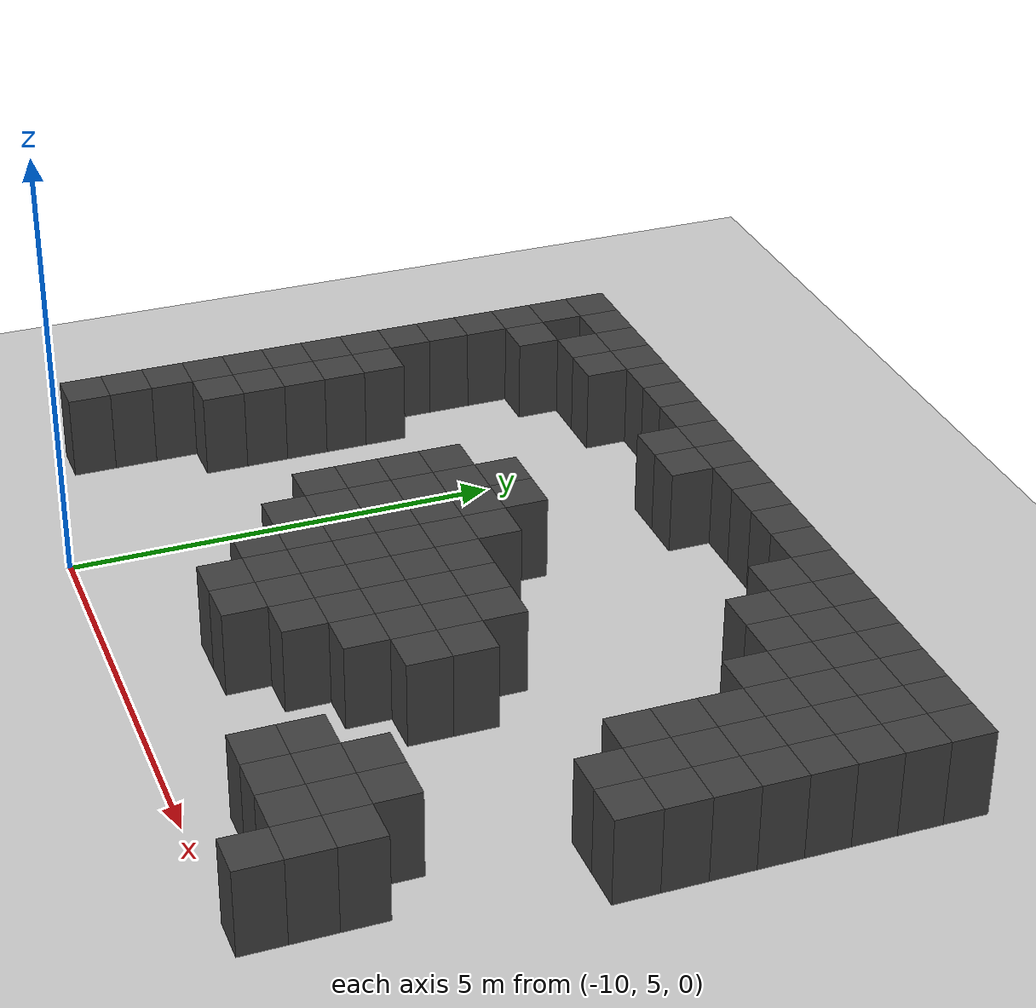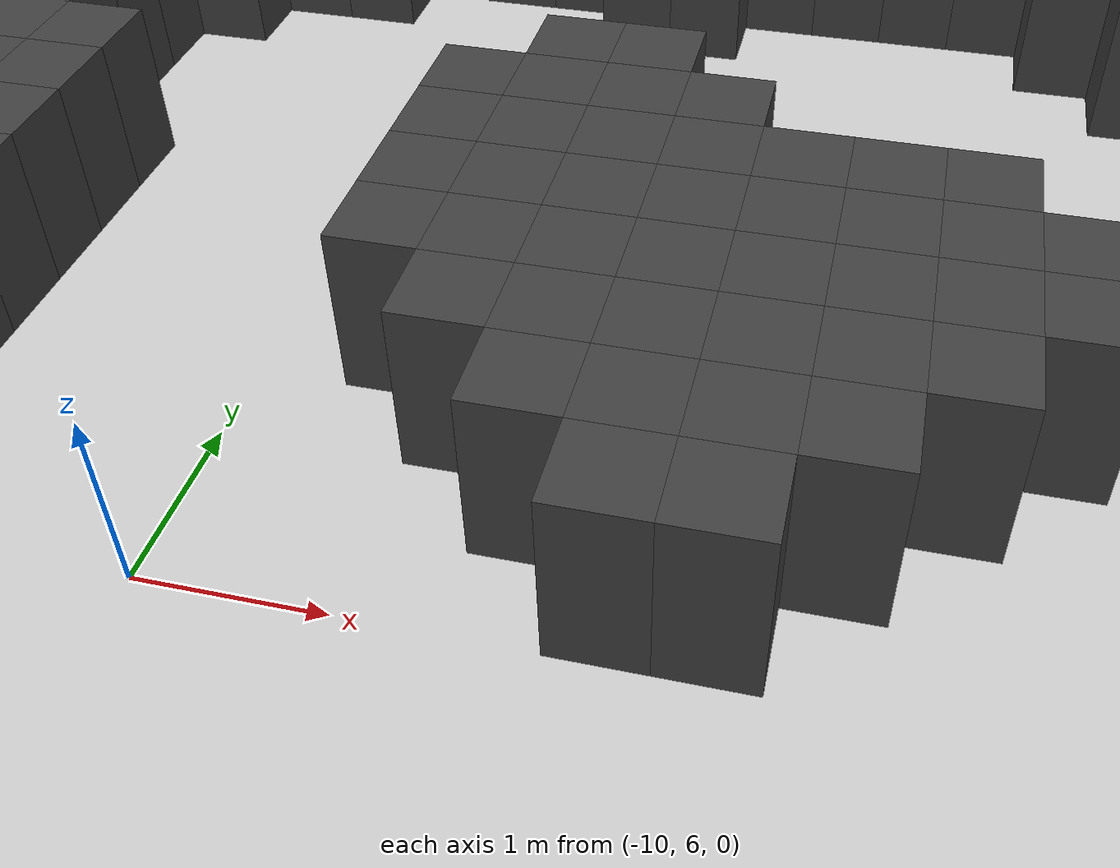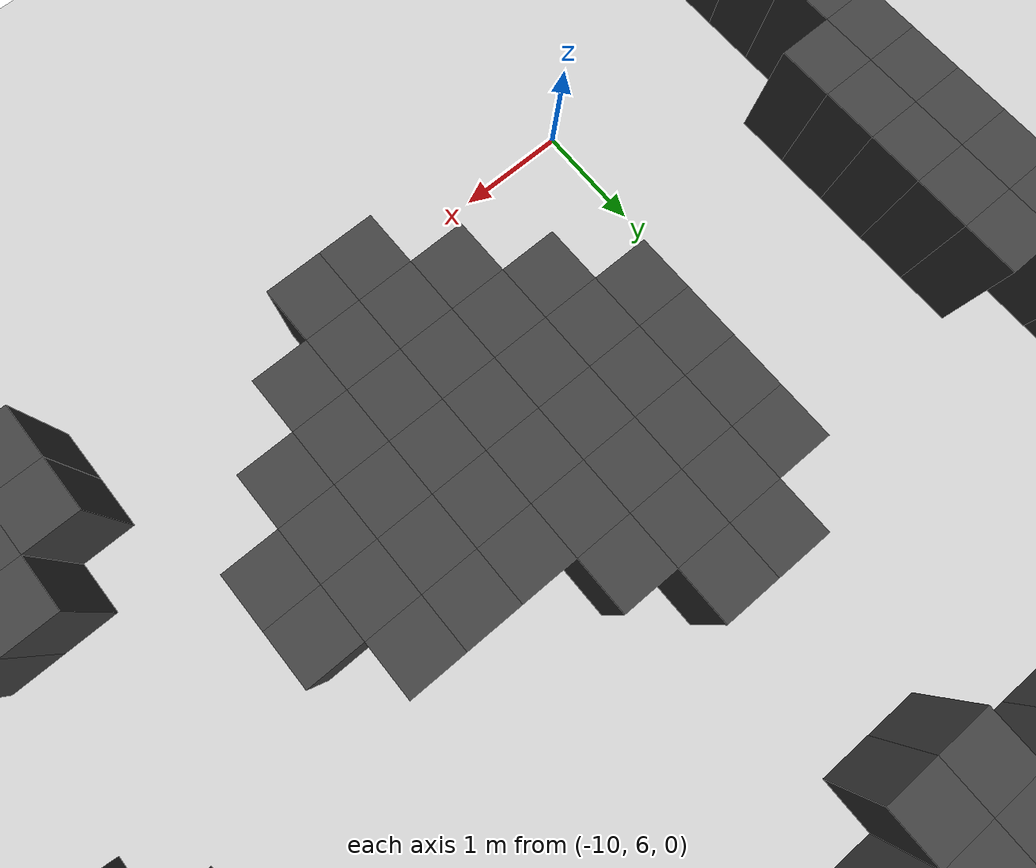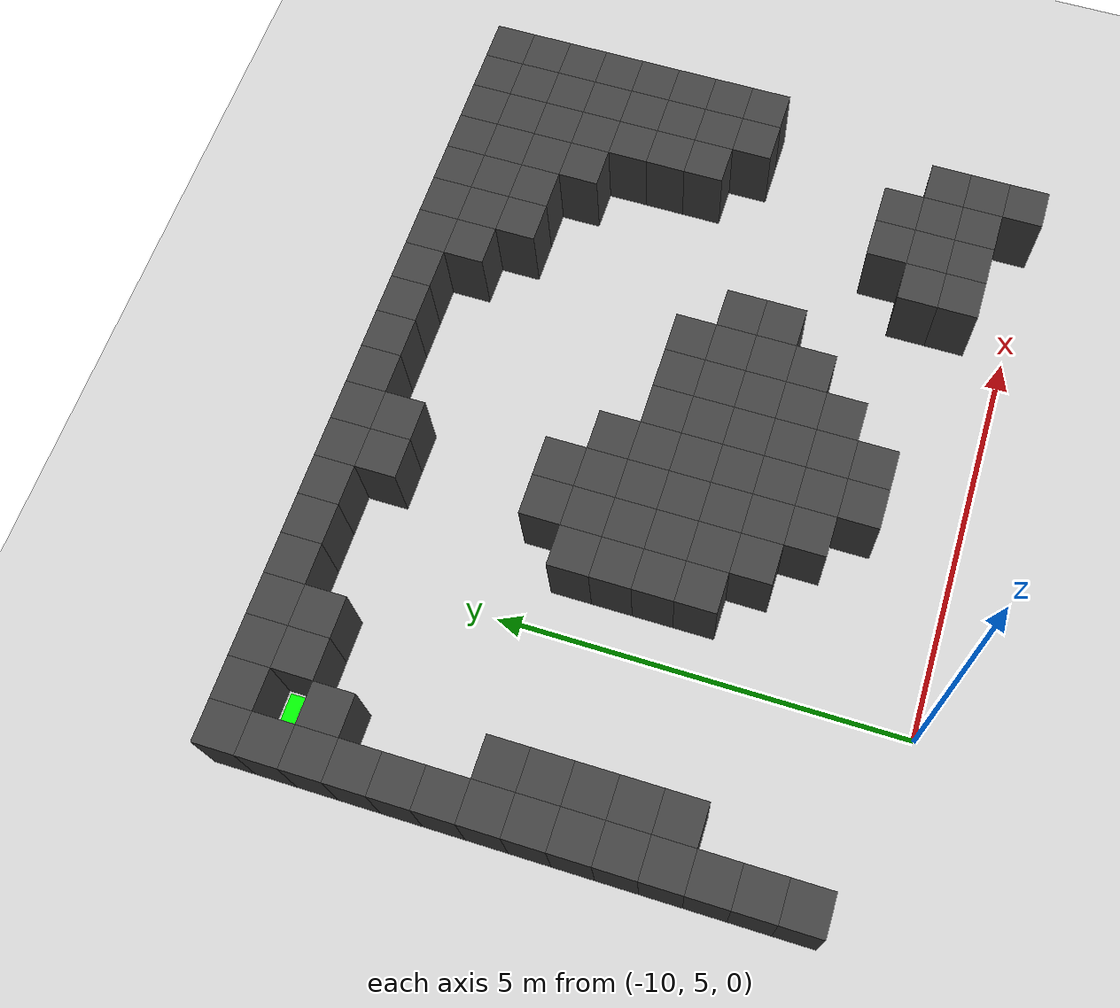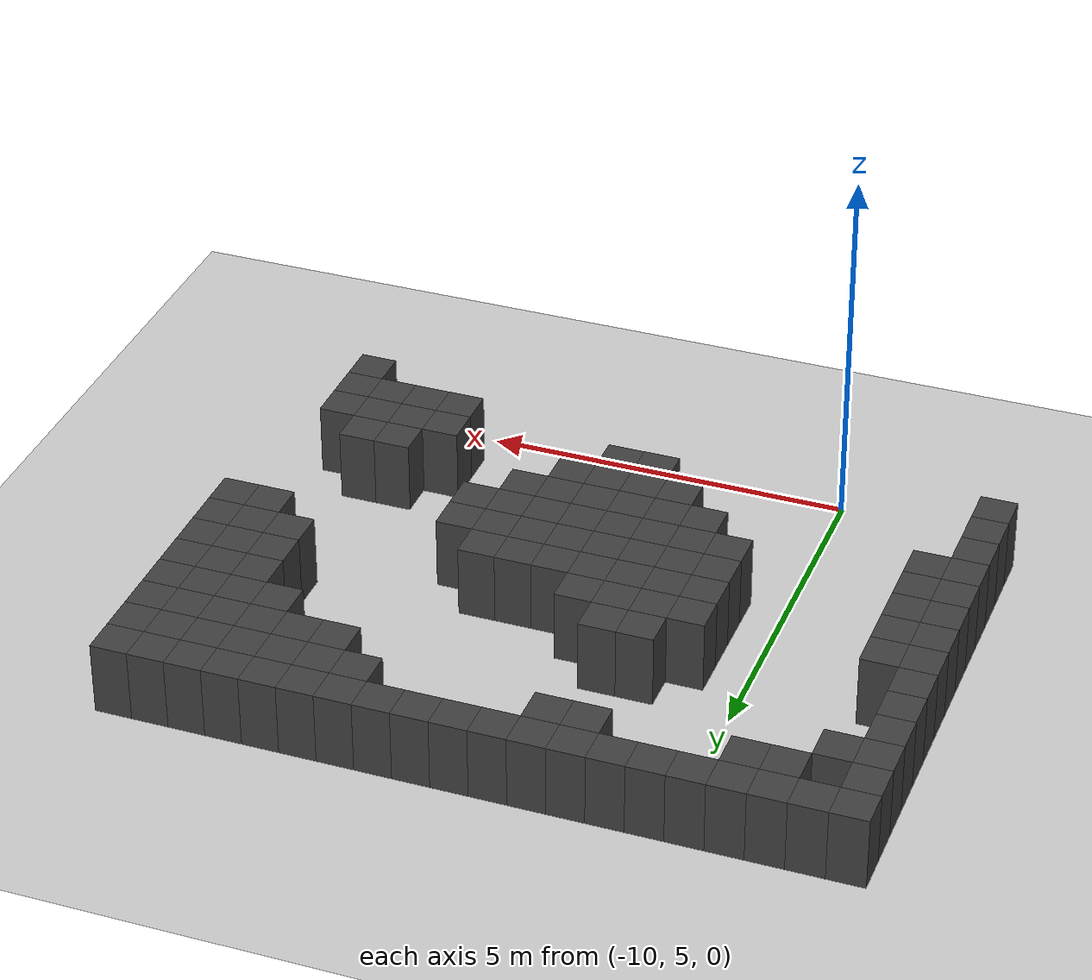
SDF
<sdf version="1.7">
 <world name="map_8382">
  <model name="ground_plane">
   <static>true</static>
   <link name="link">
    <collision name="collision">
     <geometry><plane><normal>0 0 1</normal><size>200 200</size></plane></geometry>
    </collision>
    <visual name="visual">
     <geometry><plane><normal>0 0 1</normal><size>200 200</size></plane></geometry>
     <material><ambient>0.8 0.8 0.8 1</ambient><diffuse>0.8 0.8 0.8 1</diffuse></material>
    </visual>
   </link>
  </model>
  <model name="maze_environment">
   <static>true</static>
   <link name="wall_0">
    <pose>-12.250 12.250 0.500 0 0 0</pose>
    <collision name="col"><geometry><box><size>0.5 0.5 1.0</size></box></geometry></collision>
    <visual name="vis">
     <geometry><box><size>0.5 0.5 1.0</size></box></geometry>
     <material><ambient>0.15 0.15 0.15 1</ambient><diffuse>0.25 0.25 0.25 1</diffuse></material>
    </visual>
   </link>
   <link name="wall_1">
    <pose>-11.750 12.250 0.500 0 0 0</pose>
    <collision name="col"><geometry><box><size>0.5 0.5 1.0</size></box></geometry></collision>
    <visual name="vis">
     <geometry><box><size>0.5 0.5 1.0</size></box></geometry>
     <material><ambient>0.15 0.15 0.15 1</ambient><diffuse>0.25 0.25 0.25 1</diffuse></material>
    </visual>
   </link>
   <link name="wall_2">
    <pose>-11.250 12.250 0.500 0 0 0</pose>
    <collision name="col"><geometry><box><size>0.5 0.5 1.0</size></box></geometry></collision>
    <visual name="vis">
     <geometry><box><size>0.5 0.5 1.0</size></box></geometry>
     <material><ambient>0.15 0.15 0.15 1</ambient><diffuse>0.25 0.25 0.25 1</diffuse></material>
    </visual>
   </link>
   <link name="wall_3">
    <pose>-10.750 12.250 0.500 0 0 0</pose>
    <collision name="col"><geometry><box><size>0.5 0.5 1.0</size></box></geometry></collision>
    <visual name="vis">
     <geometry><box><size>0.5 0.5 1.0</size></box></geometry>
     <material><ambient>0.15 0.15 0.15 1</ambient><diffuse>0.25 0.25 0.25 1</diffuse></material>
    </visual>
   </link>
   <link name="wall_4">
    <pose>-10.250 12.250 0.500 0 0 0</pose>
    <collision name="col"><geometry><box><size>0.5 0.5 1.0</size></box></geometry></collision>
    <visual name="vis">
     <geometry><box><size>0.5 0.5 1.0</size></box></geometry>
     <material><ambient>0.15 0.15 0.15 1</ambient><diffuse>0.25 0.25 0.25 1</diffuse></material>
    </visual>
   </link>
   <link name="wall_5">
    <pose>-9.750 12.250 0.500 0 0 0</pose>
    <collision name="col"><geometry><box><size>0.5 0.5 1.0</size></box></geometry></collision>
    <visual name="vis">
     <geometry><box><size>0.5 0.5 1.0</size></box></geometry>
     <material><ambient>0.15 0.15 0.15 1</ambient><diffuse>0.25 0.25 0.25 1</diffuse></material>
    </visual>
   </link>
   <link name="wall_6">
    <pose>-9.250 12.250 0.500 0 0 0</pose>
    <collision name="col"><geometry><box><size>0.5 0.5 1.0</size></box></geometry></collision>
    <visual name="vis">
     <geometry><box><size>0.5 0.5 1.0</size></box></geometry>
     <material><ambient>0.15 0.15 0.15 1</ambient><diffuse>0.25 0.25 0.25 1</diffuse></material>
    </visual>
   </link>
   <link name="wall_7">
    <pose>-8.750 12.250 0.500 0 0 0</pose>
    <collision name="col"><geometry><box><size>0.5 0.5 1.0</size></box></geometry></collision>
    <visual name="vis">
     <geometry><box><size>0.5 0.5 1.0</size></box></geometry>
     <material><ambient>0.15 0.15 0.15 1</ambient><diffuse>0.25 0.25 0.25 1</diffuse></material>
    </visual>
   </link>
   <link name="wall_8">
    <pose>-8.250 12.250 0.500 0 0 0</pose>
    <collision name="col"><geometry><box><size>0.5 0.5 1.0</size></box></geometry></collision>
    <visual name="vis">
     <geometry><box><size>0.5 0.5 1.0</size></box></geometry>
     <material><ambient>0.15 0.15 0.15 1</ambient><diffuse>0.25 0.25 0.25 1</diffuse></material>
    </visual>
   </link>
   <link name="wall_9">
    <pose>-7.750 12.250 0.500 0 0 0</pose>
    <collision name="col"><geometry><box><size>0.5 0.5 1.0</size></box></geometry></collision>
    <visual name="vis">
     <geometry><box><size>0.5 0.5 1.0</size></box></geometry>
     <material><ambient>0.15 0.15 0.15 1</ambient><diffuse>0.25 0.25 0.25 1</diffuse></material>
    </visual>
   </link>
   <link name="wall_10">
    <pose>-7.250 12.250 0.500 0 0 0</pose>
    <collision name="col"><geometry><box><size>0.5 0.5 1.0</size></box></geometry></collision>
    <visual name="vis">
     <geometry><box><size>0.5 0.5 1.0</size></box></geometry>
     <material><ambient>0.15 0.15 0.15 1</ambient><diffuse>0.25 0.25 0.25 1</diffuse></material>
    </visual>
   </link>
   <link name="wall_11">
    <pose>-6.750 12.250 0.500 0 0 0</pose>
    <collision name="col"><geometry><box><size>0.5 0.5 1.0</size></box></geometry></collision>
    <visual name="vis">
     <geometry><box><size>0.5 0.5 1.0</size></box></geometry>
     <material><ambient>0.15 0.15 0.15 1</ambient><diffuse>0.25 0.25 0.25 1</diffuse></material>
    </visual>
   </link>
   <link name="wall_12">
    <pose>-6.250 12.250 0.500 0 0 0</pose>
    <collision name="col"><geometry><box><size>0.5 0.5 1.0</size></box></geometry></collision>
    <visual name="vis">
     <geometry><box><size>0.5 0.5 1.0</size></box></geometry>
     <material><ambient>0.15 0.15 0.15 1</ambient><diffuse>0.25 0.25 0.25 1</diffuse></material>
    </visual>
   </link>
   <link name="wall_13">
    <pose>-5.750 12.250 0.500 0 0 0</pose>
    <collision name="col"><geometry><box><size>0.5 0.5 1.0</size></box></geometry></collision>
    <visual name="vis">
     <geometry><box><size>0.5 0.5 1.0</size></box></geometry>
     <material><ambient>0.15 0.15 0.15 1</ambient><diffuse>0.25 0.25 0.25 1</diffuse></material>
    </visual>
   </link>
   <link name="wall_14">
    <pose>-5.250 12.250 0.500 0 0 0</pose>
    <collision name="col"><geometry><box><size>0.5 0.5 1.0</size></box></geometry></collision>
    <visual name="vis">
     <geometry><box><size>0.5 0.5 1.0</size></box></geometry>
     <material><ambient>0.15 0.15 0.15 1</ambient><diffuse>0.25 0.25 0.25 1</diffuse></material>
    </visual>
   </link>
   <link name="wall_15">
    <pose>-4.750 12.250 0.500 0 0 0</pose>
    <collision name="col"><geometry><box><size>0.5 0.5 1.0</size></box></geometry></collision>
    <visual name="vis">
     <geometry><box><size>0.5 0.5 1.0</size></box></geometry>
     <material><ambient>0.15 0.15 0.15 1</ambient><diffuse>0.25 0.25 0.25 1</diffuse></material>
    </visual>
   </link>
   <link name="wall_16">
    <pose>-4.250 12.250 0.500 0 0 0</pose>
    <collision name="col"><geometry><box><size>0.5 0.5 1.0</size></box></geometry></collision>
    <visual name="vis">
     <geometry><box><size>0.5 0.5 1.0</size></box></geometry>
     <material><ambient>0.15 0.15 0.15 1</ambient><diffuse>0.25 0.25 0.25 1</diffuse></material>
    </visual>
   </link>
   <link name="wall_17">
    <pose>-3.750 12.250 0.500 0 0 0</pose>
    <collision name="col"><geometry><box><size>0.5 0.5 1.0</size></box></geometry></collision>
    <visual name="vis">
     <geometry><box><size>0.5 0.5 1.0</size></box></geometry>
     <material><ambient>0.15 0.15 0.15 1</ambient><diffuse>0.25 0.25 0.25 1</diffuse></material>
    </visual>
   </link>
   <link name="wall_18">
    <pose>-3.250 12.250 0.500 0 0 0</pose>
    <collision name="col"><geometry><box><size>0.5 0.5 1.0</size></box></geometry></collision>
    <visual name="vis">
     <geometry><box><size>0.5 0.5 1.0</size></box></geometry>
     <material><ambient>0.15 0.15 0.15 1</ambient><diffuse>0.25 0.25 0.25 1</diffuse></material>
    </visual>
   </link>
   <link name="wall_19">
    <pose>-2.750 12.250 0.500 0 0 0</pose>
    <collision name="col"><geometry><box><size>0.5 0.5 1.0</size></box></geometry></collision>
    <visual name="vis">
     <geometry><box><size>0.5 0.5 1.0</size></box></geometry>
     <material><ambient>0.15 0.15 0.15 1</ambient><diffuse>0.25 0.25 0.25 1</diffuse></material>
    </visual>
   </link>
   <link name="wall_50">
    <pose>-12.250 11.750 0.500 0 0 0</pose>
    <collision name="col"><geometry><box><size>0.5 0.5 1.0</size></box></geometry></collision>
    <visual name="vis">
     <geometry><box><size>0.5 0.5 1.0</size></box></geometry>
     <material><ambient>0.15 0.15 0.15 1</ambient><diffuse>0.25 0.25 0.25 1</diffuse></material>
    </visual>
   </link>
   <link name="wall_51">
    <pose>-11.250 11.750 0.500 0 0 0</pose>
    <collision name="col"><geometry><box><size>0.5 0.5 1.0</size></box></geometry></collision>
    <visual name="vis">
     <geometry><box><size>0.5 0.5 1.0</size></box></geometry>
     <material><ambient>0.15 0.15 0.15 1</ambient><diffuse>0.25 0.25 0.25 1</diffuse></material>
    </visual>
   </link>
   <link name="wall_52">
    <pose>-10.750 11.750 0.500 0 0 0</pose>
    <collision name="col"><geometry><box><size>0.5 0.5 1.0</size></box></geometry></collision>
    <visual name="vis">
     <geometry><box><size>0.5 0.5 1.0</size></box></geometry>
     <material><ambient>0.15 0.15 0.15 1</ambient><diffuse>0.25 0.25 0.25 1</diffuse></material>
    </visual>
   </link>
   <link name="wall_53">
    <pose>-8.750 11.750 0.500 0 0 0</pose>
    <collision name="col"><geometry><box><size>0.5 0.5 1.0</size></box></geometry></collision>
    <visual name="vis">
     <geometry><box><size>0.5 0.5 1.0</size></box></geometry>
     <material><ambient>0.15 0.15 0.15 1</ambient><diffuse>0.25 0.25 0.25 1</diffuse></material>
    </visual>
   </link>
   <link name="wall_54">
    <pose>-8.250 11.750 0.500 0 0 0</pose>
    <collision name="col"><geometry><box><size>0.5 0.5 1.0</size></box></geometry></collision>
    <visual name="vis">
     <geometry><box><size>0.5 0.5 1.0</size></box></geometry>
     <material><ambient>0.15 0.15 0.15 1</ambient><diffuse>0.25 0.25 0.25 1</diffuse></material>
    </visual>
   </link>
   <link name="wall_55">
    <pose>-5.750 11.750 0.500 0 0 0</pose>
    <collision name="col"><geometry><box><size>0.5 0.5 1.0</size></box></geometry></collision>
    <visual name="vis">
     <geometry><box><size>0.5 0.5 1.0</size></box></geometry>
     <material><ambient>0.15 0.15 0.15 1</ambient><diffuse>0.25 0.25 0.25 1</diffuse></material>
    </visual>
   </link>
   <link name="wall_56">
    <pose>-5.250 11.750 0.500 0 0 0</pose>
    <collision name="col"><geometry><box><size>0.5 0.5 1.0</size></box></geometry></collision>
    <visual name="vis">
     <geometry><box><size>0.5 0.5 1.0</size></box></geometry>
     <material><ambient>0.15 0.15 0.15 1</ambient><diffuse>0.25 0.25 0.25 1</diffuse></material>
    </visual>
   </link>
   <link name="wall_57">
    <pose>-4.750 11.750 0.500 0 0 0</pose>
    <collision name="col"><geometry><box><size>0.5 0.5 1.0</size></box></geometry></collision>
    <visual name="vis">
     <geometry><box><size>0.5 0.5 1.0</size></box></geometry>
     <material><ambient>0.15 0.15 0.15 1</ambient><diffuse>0.25 0.25 0.25 1</diffuse></material>
    </visual>
   </link>
   <link name="wall_58">
    <pose>-4.250 11.750 0.500 0 0 0</pose>
    <collision name="col"><geometry><box><size>0.5 0.5 1.0</size></box></geometry></collision>
    <visual name="vis">
     <geometry><box><size>0.5 0.5 1.0</size></box></geometry>
     <material><ambient>0.15 0.15 0.15 1</ambient><diffuse>0.25 0.25 0.25 1</diffuse></material>
    </visual>
   </link>
   <link name="wall_59">
    <pose>-3.750 11.750 0.500 0 0 0</pose>
    <collision name="col"><geometry><box><size>0.5 0.5 1.0</size></box></geometry></collision>
    <visual name="vis">
     <geometry><box><size>0.5 0.5 1.0</size></box></geometry>
     <material><ambient>0.15 0.15 0.15 1</ambient><diffuse>0.25 0.25 0.25 1</diffuse></material>
    </visual>
   </link>
   <link name="wall_60">
    <pose>-3.250 11.750 0.500 0 0 0</pose>
    <collision name="col"><geometry><box><size>0.5 0.5 1.0</size></box></geometry></collision>
    <visual name="vis">
     <geometry><box><size>0.5 0.5 1.0</size></box></geometry>
     <material><ambient>0.15 0.15 0.15 1</ambient><diffuse>0.25 0.25 0.25 1</diffuse></material>
    </visual>
   </link>
   <link name="wall_61">
    <pose>-2.750 11.750 0.500 0 0 0</pose>
    <collision name="col"><geometry><box><size>0.5 0.5 1.0</size></box></geometry></collision>
    <visual name="vis">
     <geometry><box><size>0.5 0.5 1.0</size></box></geometry>
     <material><ambient>0.15 0.15 0.15 1</ambient><diffuse>0.25 0.25 0.25 1</diffuse></material>
    </visual>
   </link>
   <link name="wall_74">
    <pose>-12.250 11.250 0.500 0 0 0</pose>
    <collision name="col"><geometry><box><size>0.5 0.5 1.0</size></box></geometry></collision>
    <visual name="vis">
     <geometry><box><size>0.5 0.5 1.0</size></box></geometry>
     <material><ambient>0.15 0.15 0.15 1</ambient><diffuse>0.25 0.25 0.25 1</diffuse></material>
    </visual>
   </link>
   <link name="wall_75">
    <pose>-11.750 11.250 0.500 0 0 0</pose>
    <collision name="col"><geometry><box><size>0.5 0.5 1.0</size></box></geometry></collision>
    <visual name="vis">
     <geometry><box><size>0.5 0.5 1.0</size></box></geometry>
     <material><ambient>0.15 0.15 0.15 1</ambient><diffuse>0.25 0.25 0.25 1</diffuse></material>
    </visual>
   </link>
   <link name="wall_76">
    <pose>-5.250 11.250 0.500 0 0 0</pose>
    <collision name="col"><geometry><box><size>0.5 0.5 1.0</size></box></geometry></collision>
    <visual name="vis">
     <geometry><box><size>0.5 0.5 1.0</size></box></geometry>
     <material><ambient>0.15 0.15 0.15 1</ambient><diffuse>0.25 0.25 0.25 1</diffuse></material>
    </visual>
   </link>
   <link name="wall_77">
    <pose>-4.750 11.250 0.500 0 0 0</pose>
    <collision name="col"><geometry><box><size>0.5 0.5 1.0</size></box></geometry></collision>
    <visual name="vis">
     <geometry><box><size>0.5 0.5 1.0</size></box></geometry>
     <material><ambient>0.15 0.15 0.15 1</ambient><diffuse>0.25 0.25 0.25 1</diffuse></material>
    </visual>
   </link>
   <link name="wall_78">
    <pose>-4.250 11.250 0.500 0 0 0</pose>
    <collision name="col"><geometry><box><size>0.5 0.5 1.0</size></box></geometry></collision>
    <visual name="vis">
     <geometry><box><size>0.5 0.5 1.0</size></box></geometry>
     <material><ambient>0.15 0.15 0.15 1</ambient><diffuse>0.25 0.25 0.25 1</diffuse></material>
    </visual>
   </link>
   <link name="wall_79">
    <pose>-3.750 11.250 0.500 0 0 0</pose>
    <collision name="col"><geometry><box><size>0.5 0.5 1.0</size></box></geometry></collision>
    <visual name="vis">
     <geometry><box><size>0.5 0.5 1.0</size></box></geometry>
     <material><ambient>0.15 0.15 0.15 1</ambient><diffuse>0.25 0.25 0.25 1</diffuse></material>
    </visual>
   </link>
   <link name="wall_80">
    <pose>-3.250 11.250 0.500 0 0 0</pose>
    <collision name="col"><geometry><box><size>0.5 0.5 1.0</size></box></geometry></collision>
    <visual name="vis">
     <geometry><box><size>0.5 0.5 1.0</size></box></geometry>
     <material><ambient>0.15 0.15 0.15 1</ambient><diffuse>0.25 0.25 0.25 1</diffuse></material>
    </visual>
   </link>
   <link name="wall_81">
    <pose>-2.750 11.250 0.500 0 0 0</pose>
    <collision name="col"><geometry><box><size>0.5 0.5 1.0</size></box></geometry></collision>
    <visual name="vis">
     <geometry><box><size>0.5 0.5 1.0</size></box></geometry>
     <material><ambient>0.15 0.15 0.15 1</ambient><diffuse>0.25 0.25 0.25 1</diffuse></material>
    </visual>
   </link>
   <link name="wall_89">
    <pose>-12.250 10.750 0.500 0 0 0</pose>
    <collision name="col"><geometry><box><size>0.5 0.5 1.0</size></box></geometry></collision>
    <visual name="vis">
     <geometry><box><size>0.5 0.5 1.0</size></box></geometry>
     <material><ambient>0.15 0.15 0.15 1</ambient><diffuse>0.25 0.25 0.25 1</diffuse></material>
    </visual>
   </link>
   <link name="wall_90">
    <pose>-4.250 10.750 0.500 0 0 0</pose>
    <collision name="col"><geometry><box><size>0.5 0.5 1.0</size></box></geometry></collision>
    <visual name="vis">
     <geometry><box><size>0.5 0.5 1.0</size></box></geometry>
     <material><ambient>0.15 0.15 0.15 1</ambient><diffuse>0.25 0.25 0.25 1</diffuse></material>
    </visual>
   </link>
   <link name="wall_91">
    <pose>-3.750 10.750 0.500 0 0 0</pose>
    <collision name="col"><geometry><box><size>0.5 0.5 1.0</size></box></geometry></collision>
    <visual name="vis">
     <geometry><box><size>0.5 0.5 1.0</size></box></geometry>
     <material><ambient>0.15 0.15 0.15 1</ambient><diffuse>0.25 0.25 0.25 1</diffuse></material>
    </visual>
   </link>
   <link name="wall_92">
    <pose>-3.250 10.750 0.500 0 0 0</pose>
    <collision name="col"><geometry><box><size>0.5 0.5 1.0</size></box></geometry></collision>
    <visual name="vis">
     <geometry><box><size>0.5 0.5 1.0</size></box></geometry>
     <material><ambient>0.15 0.15 0.15 1</ambient><diffuse>0.25 0.25 0.25 1</diffuse></material>
    </visual>
   </link>
   <link name="wall_93">
    <pose>-2.750 10.750 0.500 0 0 0</pose>
    <collision name="col"><geometry><box><size>0.5 0.5 1.0</size></box></geometry></collision>
    <visual name="vis">
     <geometry><box><size>0.5 0.5 1.0</size></box></geometry>
     <material><ambient>0.15 0.15 0.15 1</ambient><diffuse>0.25 0.25 0.25 1</diffuse></material>
    </visual>
   </link>
   <link name="wall_101">
    <pose>-12.250 10.250 0.500 0 0 0</pose>
    <collision name="col"><geometry><box><size>0.5 0.5 1.0</size></box></geometry></collision>
    <visual name="vis">
     <geometry><box><size>0.5 0.5 1.0</size></box></geometry>
     <material><ambient>0.15 0.15 0.15 1</ambient><diffuse>0.25 0.25 0.25 1</diffuse></material>
    </visual>
   </link>
   <link name="wall_102">
    <pose>-3.750 10.250 0.500 0 0 0</pose>
    <collision name="col"><geometry><box><size>0.5 0.5 1.0</size></box></geometry></collision>
    <visual name="vis">
     <geometry><box><size>0.5 0.5 1.0</size></box></geometry>
     <material><ambient>0.15 0.15 0.15 1</ambient><diffuse>0.25 0.25 0.25 1</diffuse></material>
    </visual>
   </link>
   <link name="wall_103">
    <pose>-3.250 10.250 0.500 0 0 0</pose>
    <collision name="col"><geometry><box><size>0.5 0.5 1.0</size></box></geometry></collision>
    <visual name="vis">
     <geometry><box><size>0.5 0.5 1.0</size></box></geometry>
     <material><ambient>0.15 0.15 0.15 1</ambient><diffuse>0.25 0.25 0.25 1</diffuse></material>
    </visual>
   </link>
   <link name="wall_104">
    <pose>-2.750 10.250 0.500 0 0 0</pose>
    <collision name="col"><geometry><box><size>0.5 0.5 1.0</size></box></geometry></collision>
    <visual name="vis">
     <geometry><box><size>0.5 0.5 1.0</size></box></geometry>
     <material><ambient>0.15 0.15 0.15 1</ambient><diffuse>0.25 0.25 0.25 1</diffuse></material>
    </visual>
   </link>
   <link name="wall_114">
    <pose>-12.250 9.750 0.500 0 0 0</pose>
    <collision name="col"><geometry><box><size>0.5 0.5 1.0</size></box></geometry></collision>
    <visual name="vis">
     <geometry><box><size>0.5 0.5 1.0</size></box></geometry>
     <material><ambient>0.15 0.15 0.15 1</ambient><diffuse>0.25 0.25 0.25 1</diffuse></material>
    </visual>
   </link>
   <link name="wall_115">
    <pose>-8.750 9.750 0.500 0 0 0</pose>
    <collision name="col"><geometry><box><size>0.5 0.5 1.0</size></box></geometry></collision>
    <visual name="vis">
     <geometry><box><size>0.5 0.5 1.0</size></box></geometry>
     <material><ambient>0.15 0.15 0.15 1</ambient><diffuse>0.25 0.25 0.25 1</diffuse></material>
    </visual>
   </link>
   <link name="wall_116">
    <pose>-8.250 9.750 0.500 0 0 0</pose>
    <collision name="col"><geometry><box><size>0.5 0.5 1.0</size></box></geometry></collision>
    <visual name="vis">
     <geometry><box><size>0.5 0.5 1.0</size></box></geometry>
     <material><ambient>0.15 0.15 0.15 1</ambient><diffuse>0.25 0.25 0.25 1</diffuse></material>
    </visual>
   </link>
   <link name="wall_117">
    <pose>-3.750 9.750 0.500 0 0 0</pose>
    <collision name="col"><geometry><box><size>0.5 0.5 1.0</size></box></geometry></collision>
    <visual name="vis">
     <geometry><box><size>0.5 0.5 1.0</size></box></geometry>
     <material><ambient>0.15 0.15 0.15 1</ambient><diffuse>0.25 0.25 0.25 1</diffuse></material>
    </visual>
   </link>
   <link name="wall_118">
    <pose>-3.250 9.750 0.500 0 0 0</pose>
    <collision name="col"><geometry><box><size>0.5 0.5 1.0</size></box></geometry></collision>
    <visual name="vis">
     <geometry><box><size>0.5 0.5 1.0</size></box></geometry>
     <material><ambient>0.15 0.15 0.15 1</ambient><diffuse>0.25 0.25 0.25 1</diffuse></material>
    </visual>
   </link>
   <link name="wall_119">
    <pose>-2.750 9.750 0.500 0 0 0</pose>
    <collision name="col"><geometry><box><size>0.5 0.5 1.0</size></box></geometry></collision>
    <visual name="vis">
     <geometry><box><size>0.5 0.5 1.0</size></box></geometry>
     <material><ambient>0.15 0.15 0.15 1</ambient><diffuse>0.25 0.25 0.25 1</diffuse></material>
    </visual>
   </link>
   <link name="wall_130">
    <pose>-12.250 9.250 0.500 0 0 0</pose>
    <collision name="col"><geometry><box><size>0.5 0.5 1.0</size></box></geometry></collision>
    <visual name="vis">
     <geometry><box><size>0.5 0.5 1.0</size></box></geometry>
     <material><ambient>0.15 0.15 0.15 1</ambient><diffuse>0.25 0.25 0.25 1</diffuse></material>
    </visual>
   </link>
   <link name="wall_131">
    <pose>-11.750 9.250 0.500 0 0 0</pose>
    <collision name="col"><geometry><box><size>0.5 0.5 1.0</size></box></geometry></collision>
    <visual name="vis">
     <geometry><box><size>0.5 0.5 1.0</size></box></geometry>
     <material><ambient>0.15 0.15 0.15 1</ambient><diffuse>0.25 0.25 0.25 1</diffuse></material>
    </visual>
   </link>
   <link name="wall_132">
    <pose>-9.250 9.250 0.500 0 0 0</pose>
    <collision name="col"><geometry><box><size>0.5 0.5 1.0</size></box></geometry></collision>
    <visual name="vis">
     <geometry><box><size>0.5 0.5 1.0</size></box></geometry>
     <material><ambient>0.15 0.15 0.15 1</ambient><diffuse>0.25 0.25 0.25 1</diffuse></material>
    </visual>
   </link>
   <link name="wall_133">
    <pose>-8.750 9.250 0.500 0 0 0</pose>
    <collision name="col"><geometry><box><size>0.5 0.5 1.0</size></box></geometry></collision>
    <visual name="vis">
     <geometry><box><size>0.5 0.5 1.0</size></box></geometry>
     <material><ambient>0.15 0.15 0.15 1</ambient><diffuse>0.25 0.25 0.25 1</diffuse></material>
    </visual>
   </link>
   <link name="wall_134">
    <pose>-8.250 9.250 0.500 0 0 0</pose>
    <collision name="col"><geometry><box><size>0.5 0.5 1.0</size></box></geometry></collision>
    <visual name="vis">
     <geometry><box><size>0.5 0.5 1.0</size></box></geometry>
     <material><ambient>0.15 0.15 0.15 1</ambient><diffuse>0.25 0.25 0.25 1</diffuse></material>
    </visual>
   </link>
   <link name="wall_135">
    <pose>-7.750 9.250 0.500 0 0 0</pose>
    <collision name="col"><geometry><box><size>0.5 0.5 1.0</size></box></geometry></collision>
    <visual name="vis">
     <geometry><box><size>0.5 0.5 1.0</size></box></geometry>
     <material><ambient>0.15 0.15 0.15 1</ambient><diffuse>0.25 0.25 0.25 1</diffuse></material>
    </visual>
   </link>
   <link name="wall_136">
    <pose>-3.750 9.250 0.500 0 0 0</pose>
    <collision name="col"><geometry><box><size>0.5 0.5 1.0</size></box></geometry></collision>
    <visual name="vis">
     <geometry><box><size>0.5 0.5 1.0</size></box></geometry>
     <material><ambient>0.15 0.15 0.15 1</ambient><diffuse>0.25 0.25 0.25 1</diffuse></material>
    </visual>
   </link>
   <link name="wall_137">
    <pose>-3.250 9.250 0.500 0 0 0</pose>
    <collision name="col"><geometry><box><size>0.5 0.5 1.0</size></box></geometry></collision>
    <visual name="vis">
     <geometry><box><size>0.5 0.5 1.0</size></box></geometry>
     <material><ambient>0.15 0.15 0.15 1</ambient><diffuse>0.25 0.25 0.25 1</diffuse></material>
    </visual>
   </link>
   <link name="wall_138">
    <pose>-2.750 9.250 0.500 0 0 0</pose>
    <collision name="col"><geometry><box><size>0.5 0.5 1.0</size></box></geometry></collision>
    <visual name="vis">
     <geometry><box><size>0.5 0.5 1.0</size></box></geometry>
     <material><ambient>0.15 0.15 0.15 1</ambient><diffuse>0.25 0.25 0.25 1</diffuse></material>
    </visual>
   </link>
   <link name="wall_147">
    <pose>-12.250 8.750 0.500 0 0 0</pose>
    <collision name="col"><geometry><box><size>0.5 0.5 1.0</size></box></geometry></collision>
    <visual name="vis">
     <geometry><box><size>0.5 0.5 1.0</size></box></geometry>
     <material><ambient>0.15 0.15 0.15 1</ambient><diffuse>0.25 0.25 0.25 1</diffuse></material>
    </visual>
   </link>
   <link name="wall_148">
    <pose>-11.750 8.750 0.500 0 0 0</pose>
    <collision name="col"><geometry><box><size>0.5 0.5 1.0</size></box></geometry></collision>
    <visual name="vis">
     <geometry><box><size>0.5 0.5 1.0</size></box></geometry>
     <material><ambient>0.15 0.15 0.15 1</ambient><diffuse>0.25 0.25 0.25 1</diffuse></material>
    </visual>
   </link>
   <link name="wall_149">
    <pose>-9.250 8.750 0.500 0 0 0</pose>
    <collision name="col"><geometry><box><size>0.5 0.5 1.0</size></box></geometry></collision>
    <visual name="vis">
     <geometry><box><size>0.5 0.5 1.0</size></box></geometry>
     <material><ambient>0.15 0.15 0.15 1</ambient><diffuse>0.25 0.25 0.25 1</diffuse></material>
    </visual>
   </link>
   <link name="wall_150">
    <pose>-8.750 8.750 0.500 0 0 0</pose>
    <collision name="col"><geometry><box><size>0.5 0.5 1.0</size></box></geometry></collision>
    <visual name="vis">
     <geometry><box><size>0.5 0.5 1.0</size></box></geometry>
     <material><ambient>0.15 0.15 0.15 1</ambient><diffuse>0.25 0.25 0.25 1</diffuse></material>
    </visual>
   </link>
   <link name="wall_151">
    <pose>-8.250 8.750 0.500 0 0 0</pose>
    <collision name="col"><geometry><box><size>0.5 0.5 1.0</size></box></geometry></collision>
    <visual name="vis">
     <geometry><box><size>0.5 0.5 1.0</size></box></geometry>
     <material><ambient>0.15 0.15 0.15 1</ambient><diffuse>0.25 0.25 0.25 1</diffuse></material>
    </visual>
   </link>
   <link name="wall_152">
    <pose>-7.750 8.750 0.500 0 0 0</pose>
    <collision name="col"><geometry><box><size>0.5 0.5 1.0</size></box></geometry></collision>
    <visual name="vis">
     <geometry><box><size>0.5 0.5 1.0</size></box></geometry>
     <material><ambient>0.15 0.15 0.15 1</ambient><diffuse>0.25 0.25 0.25 1</diffuse></material>
    </visual>
   </link>
   <link name="wall_153">
    <pose>-7.250 8.750 0.500 0 0 0</pose>
    <collision name="col"><geometry><box><size>0.5 0.5 1.0</size></box></geometry></collision>
    <visual name="vis">
     <geometry><box><size>0.5 0.5 1.0</size></box></geometry>
     <material><ambient>0.15 0.15 0.15 1</ambient><diffuse>0.25 0.25 0.25 1</diffuse></material>
    </visual>
   </link>
   <link name="wall_154">
    <pose>-6.750 8.750 0.500 0 0 0</pose>
    <collision name="col"><geometry><box><size>0.5 0.5 1.0</size></box></geometry></collision>
    <visual name="vis">
     <geometry><box><size>0.5 0.5 1.0</size></box></geometry>
     <material><ambient>0.15 0.15 0.15 1</ambient><diffuse>0.25 0.25 0.25 1</diffuse></material>
    </visual>
   </link>
   <link name="wall_155">
    <pose>-6.250 8.750 0.500 0 0 0</pose>
    <collision name="col"><geometry><box><size>0.5 0.5 1.0</size></box></geometry></collision>
    <visual name="vis">
     <geometry><box><size>0.5 0.5 1.0</size></box></geometry>
     <material><ambient>0.15 0.15 0.15 1</ambient><diffuse>0.25 0.25 0.25 1</diffuse></material>
    </visual>
   </link>
   <link name="wall_156">
    <pose>-3.250 8.750 0.500 0 0 0</pose>
    <collision name="col"><geometry><box><size>0.5 0.5 1.0</size></box></geometry></collision>
    <visual name="vis">
     <geometry><box><size>0.5 0.5 1.0</size></box></geometry>
     <material><ambient>0.15 0.15 0.15 1</ambient><diffuse>0.25 0.25 0.25 1</diffuse></material>
    </visual>
   </link>
   <link name="wall_157">
    <pose>-2.750 8.750 0.500 0 0 0</pose>
    <collision name="col"><geometry><box><size>0.5 0.5 1.0</size></box></geometry></collision>
    <visual name="vis">
     <geometry><box><size>0.5 0.5 1.0</size></box></geometry>
     <material><ambient>0.15 0.15 0.15 1</ambient><diffuse>0.25 0.25 0.25 1</diffuse></material>
    </visual>
   </link>
   <link name="wall_164">
    <pose>-12.250 8.250 0.500 0 0 0</pose>
    <collision name="col"><geometry><box><size>0.5 0.5 1.0</size></box></geometry></collision>
    <visual name="vis">
     <geometry><box><size>0.5 0.5 1.0</size></box></geometry>
     <material><ambient>0.15 0.15 0.15 1</ambient><diffuse>0.25 0.25 0.25 1</diffuse></material>
    </visual>
   </link>
   <link name="wall_165">
    <pose>-11.750 8.250 0.500 0 0 0</pose>
    <collision name="col"><geometry><box><size>0.5 0.5 1.0</size></box></geometry></collision>
    <visual name="vis">
     <geometry><box><size>0.5 0.5 1.0</size></box></geometry>
     <material><ambient>0.15 0.15 0.15 1</ambient><diffuse>0.25 0.25 0.25 1</diffuse></material>
    </visual>
   </link>
   <link name="wall_166">
    <pose>-9.250 8.250 0.500 0 0 0</pose>
    <collision name="col"><geometry><box><size>0.5 0.5 1.0</size></box></geometry></collision>
    <visual name="vis">
     <geometry><box><size>0.5 0.5 1.0</size></box></geometry>
     <material><ambient>0.15 0.15 0.15 1</ambient><diffuse>0.25 0.25 0.25 1</diffuse></material>
    </visual>
   </link>
   <link name="wall_167">
    <pose>-8.750 8.250 0.500 0 0 0</pose>
    <collision name="col"><geometry><box><size>0.5 0.5 1.0</size></box></geometry></collision>
    <visual name="vis">
     <geometry><box><size>0.5 0.5 1.0</size></box></geometry>
     <material><ambient>0.15 0.15 0.15 1</ambient><diffuse>0.25 0.25 0.25 1</diffuse></material>
    </visual>
   </link>
   <link name="wall_168">
    <pose>-8.250 8.250 0.500 0 0 0</pose>
    <collision name="col"><geometry><box><size>0.5 0.5 1.0</size></box></geometry></collision>
    <visual name="vis">
     <geometry><box><size>0.5 0.5 1.0</size></box></geometry>
     <material><ambient>0.15 0.15 0.15 1</ambient><diffuse>0.25 0.25 0.25 1</diffuse></material>
    </visual>
   </link>
   <link name="wall_169">
    <pose>-7.750 8.250 0.500 0 0 0</pose>
    <collision name="col"><geometry><box><size>0.5 0.5 1.0</size></box></geometry></collision>
    <visual name="vis">
     <geometry><box><size>0.5 0.5 1.0</size></box></geometry>
     <material><ambient>0.15 0.15 0.15 1</ambient><diffuse>0.25 0.25 0.25 1</diffuse></material>
    </visual>
   </link>
   <link name="wall_170">
    <pose>-7.250 8.250 0.500 0 0 0</pose>
    <collision name="col"><geometry><box><size>0.5 0.5 1.0</size></box></geometry></collision>
    <visual name="vis">
     <geometry><box><size>0.5 0.5 1.0</size></box></geometry>
     <material><ambient>0.15 0.15 0.15 1</ambient><diffuse>0.25 0.25 0.25 1</diffuse></material>
    </visual>
   </link>
   <link name="wall_171">
    <pose>-6.750 8.250 0.500 0 0 0</pose>
    <collision name="col"><geometry><box><size>0.5 0.5 1.0</size></box></geometry></collision>
    <visual name="vis">
     <geometry><box><size>0.5 0.5 1.0</size></box></geometry>
     <material><ambient>0.15 0.15 0.15 1</ambient><diffuse>0.25 0.25 0.25 1</diffuse></material>
    </visual>
   </link>
   <link name="wall_172">
    <pose>-6.250 8.250 0.500 0 0 0</pose>
    <collision name="col"><geometry><box><size>0.5 0.5 1.0</size></box></geometry></collision>
    <visual name="vis">
     <geometry><box><size>0.5 0.5 1.0</size></box></geometry>
     <material><ambient>0.15 0.15 0.15 1</ambient><diffuse>0.25 0.25 0.25 1</diffuse></material>
    </visual>
   </link>
   <link name="wall_173">
    <pose>-5.750 8.250 0.500 0 0 0</pose>
    <collision name="col"><geometry><box><size>0.5 0.5 1.0</size></box></geometry></collision>
    <visual name="vis">
     <geometry><box><size>0.5 0.5 1.0</size></box></geometry>
     <material><ambient>0.15 0.15 0.15 1</ambient><diffuse>0.25 0.25 0.25 1</diffuse></material>
    </visual>
   </link>
   <link name="wall_179">
    <pose>-12.250 7.750 0.500 0 0 0</pose>
    <collision name="col"><geometry><box><size>0.5 0.5 1.0</size></box></geometry></collision>
    <visual name="vis">
     <geometry><box><size>0.5 0.5 1.0</size></box></geometry>
     <material><ambient>0.15 0.15 0.15 1</ambient><diffuse>0.25 0.25 0.25 1</diffuse></material>
    </visual>
   </link>
   <link name="wall_180">
    <pose>-11.750 7.750 0.500 0 0 0</pose>
    <collision name="col"><geometry><box><size>0.5 0.5 1.0</size></box></geometry></collision>
    <visual name="vis">
     <geometry><box><size>0.5 0.5 1.0</size></box></geometry>
     <material><ambient>0.15 0.15 0.15 1</ambient><diffuse>0.25 0.25 0.25 1</diffuse></material>
    </visual>
   </link>
   <link name="wall_181">
    <pose>-9.250 7.750 0.500 0 0 0</pose>
    <collision name="col"><geometry><box><size>0.5 0.5 1.0</size></box></geometry></collision>
    <visual name="vis">
     <geometry><box><size>0.5 0.5 1.0</size></box></geometry>
     <material><ambient>0.15 0.15 0.15 1</ambient><diffuse>0.25 0.25 0.25 1</diffuse></material>
    </visual>
   </link>
   <link name="wall_182">
    <pose>-8.750 7.750 0.500 0 0 0</pose>
    <collision name="col"><geometry><box><size>0.5 0.5 1.0</size></box></geometry></collision>
    <visual name="vis">
     <geometry><box><size>0.5 0.5 1.0</size></box></geometry>
     <material><ambient>0.15 0.15 0.15 1</ambient><diffuse>0.25 0.25 0.25 1</diffuse></material>
    </visual>
   </link>
   <link name="wall_183">
    <pose>-8.250 7.750 0.500 0 0 0</pose>
    <collision name="col"><geometry><box><size>0.5 0.5 1.0</size></box></geometry></collision>
    <visual name="vis">
     <geometry><box><size>0.5 0.5 1.0</size></box></geometry>
     <material><ambient>0.15 0.15 0.15 1</ambient><diffuse>0.25 0.25 0.25 1</diffuse></material>
    </visual>
   </link>
   <link name="wall_184">
    <pose>-7.750 7.750 0.500 0 0 0</pose>
    <collision name="col"><geometry><box><size>0.5 0.5 1.0</size></box></geometry></collision>
    <visual name="vis">
     <geometry><box><size>0.5 0.5 1.0</size></box></geometry>
     <material><ambient>0.15 0.15 0.15 1</ambient><diffuse>0.25 0.25 0.25 1</diffuse></material>
    </visual>
   </link>
   <link name="wall_185">
    <pose>-7.250 7.750 0.500 0 0 0</pose>
    <collision name="col"><geometry><box><size>0.5 0.5 1.0</size></box></geometry></collision>
    <visual name="vis">
     <geometry><box><size>0.5 0.5 1.0</size></box></geometry>
     <material><ambient>0.15 0.15 0.15 1</ambient><diffuse>0.25 0.25 0.25 1</diffuse></material>
    </visual>
   </link>
   <link name="wall_186">
    <pose>-6.750 7.750 0.500 0 0 0</pose>
    <collision name="col"><geometry><box><size>0.5 0.5 1.0</size></box></geometry></collision>
    <visual name="vis">
     <geometry><box><size>0.5 0.5 1.0</size></box></geometry>
     <material><ambient>0.15 0.15 0.15 1</ambient><diffuse>0.25 0.25 0.25 1</diffuse></material>
    </visual>
   </link>
   <link name="wall_187">
    <pose>-6.250 7.750 0.500 0 0 0</pose>
    <collision name="col"><geometry><box><size>0.5 0.5 1.0</size></box></geometry></collision>
    <visual name="vis">
     <geometry><box><size>0.5 0.5 1.0</size></box></geometry>
     <material><ambient>0.15 0.15 0.15 1</ambient><diffuse>0.25 0.25 0.25 1</diffuse></material>
    </visual>
   </link>
   <link name="wall_188">
    <pose>-5.750 7.750 0.500 0 0 0</pose>
    <collision name="col"><geometry><box><size>0.5 0.5 1.0</size></box></geometry></collision>
    <visual name="vis">
     <geometry><box><size>0.5 0.5 1.0</size></box></geometry>
     <material><ambient>0.15 0.15 0.15 1</ambient><diffuse>0.25 0.25 0.25 1</diffuse></material>
    </visual>
   </link>
   <link name="wall_195">
    <pose>-12.250 7.250 0.500 0 0 0</pose>
    <collision name="col"><geometry><box><size>0.5 0.5 1.0</size></box></geometry></collision>
    <visual name="vis">
     <geometry><box><size>0.5 0.5 1.0</size></box></geometry>
     <material><ambient>0.15 0.15 0.15 1</ambient><diffuse>0.25 0.25 0.25 1</diffuse></material>
    </visual>
   </link>
   <link name="wall_196">
    <pose>-11.750 7.250 0.500 0 0 0</pose>
    <collision name="col"><geometry><box><size>0.5 0.5 1.0</size></box></geometry></collision>
    <visual name="vis">
     <geometry><box><size>0.5 0.5 1.0</size></box></geometry>
     <material><ambient>0.15 0.15 0.15 1</ambient><diffuse>0.25 0.25 0.25 1</diffuse></material>
    </visual>
   </link>
   <link name="wall_197">
    <pose>-8.750 7.250 0.500 0 0 0</pose>
    <collision name="col"><geometry><box><size>0.5 0.5 1.0</size></box></geometry></collision>
    <visual name="vis">
     <geometry><box><size>0.5 0.5 1.0</size></box></geometry>
     <material><ambient>0.15 0.15 0.15 1</ambient><diffuse>0.25 0.25 0.25 1</diffuse></material>
    </visual>
   </link>
   <link name="wall_198">
    <pose>-8.250 7.250 0.500 0 0 0</pose>
    <collision name="col"><geometry><box><size>0.5 0.5 1.0</size></box></geometry></collision>
    <visual name="vis">
     <geometry><box><size>0.5 0.5 1.0</size></box></geometry>
     <material><ambient>0.15 0.15 0.15 1</ambient><diffuse>0.25 0.25 0.25 1</diffuse></material>
    </visual>
   </link>
   <link name="wall_199">
    <pose>-7.750 7.250 0.500 0 0 0</pose>
    <collision name="col"><geometry><box><size>0.5 0.5 1.0</size></box></geometry></collision>
    <visual name="vis">
     <geometry><box><size>0.5 0.5 1.0</size></box></geometry>
     <material><ambient>0.15 0.15 0.15 1</ambient><diffuse>0.25 0.25 0.25 1</diffuse></material>
    </visual>
   </link>
   <link name="wall_200">
    <pose>-7.250 7.250 0.500 0 0 0</pose>
    <collision name="col"><geometry><box><size>0.5 0.5 1.0</size></box></geometry></collision>
    <visual name="vis">
     <geometry><box><size>0.5 0.5 1.0</size></box></geometry>
     <material><ambient>0.15 0.15 0.15 1</ambient><diffuse>0.25 0.25 0.25 1</diffuse></material>
    </visual>
   </link>
   <link name="wall_201">
    <pose>-6.750 7.250 0.500 0 0 0</pose>
    <collision name="col"><geometry><box><size>0.5 0.5 1.0</size></box></geometry></collision>
    <visual name="vis">
     <geometry><box><size>0.5 0.5 1.0</size></box></geometry>
     <material><ambient>0.15 0.15 0.15 1</ambient><diffuse>0.25 0.25 0.25 1</diffuse></material>
    </visual>
   </link>
   <link name="wall_202">
    <pose>-6.250 7.250 0.500 0 0 0</pose>
    <collision name="col"><geometry><box><size>0.5 0.5 1.0</size></box></geometry></collision>
    <visual name="vis">
     <geometry><box><size>0.5 0.5 1.0</size></box></geometry>
     <material><ambient>0.15 0.15 0.15 1</ambient><diffuse>0.25 0.25 0.25 1</diffuse></material>
    </visual>
   </link>
   <link name="wall_219">
    <pose>-12.250 6.750 0.500 0 0 0</pose>
    <collision name="col"><geometry><box><size>0.5 0.5 1.0</size></box></geometry></collision>
    <visual name="vis">
     <geometry><box><size>0.5 0.5 1.0</size></box></geometry>
     <material><ambient>0.15 0.15 0.15 1</ambient><diffuse>0.25 0.25 0.25 1</diffuse></material>
    </visual>
   </link>
   <link name="wall_220">
    <pose>-8.250 6.750 0.500 0 0 0</pose>
    <collision name="col"><geometry><box><size>0.5 0.5 1.0</size></box></geometry></collision>
    <visual name="vis">
     <geometry><box><size>0.5 0.5 1.0</size></box></geometry>
     <material><ambient>0.15 0.15 0.15 1</ambient><diffuse>0.25 0.25 0.25 1</diffuse></material>
    </visual>
   </link>
   <link name="wall_221">
    <pose>-7.750 6.750 0.500 0 0 0</pose>
    <collision name="col"><geometry><box><size>0.5 0.5 1.0</size></box></geometry></collision>
    <visual name="vis">
     <geometry><box><size>0.5 0.5 1.0</size></box></geometry>
     <material><ambient>0.15 0.15 0.15 1</ambient><diffuse>0.25 0.25 0.25 1</diffuse></material>
    </visual>
   </link>
   <link name="wall_222">
    <pose>-7.250 6.750 0.500 0 0 0</pose>
    <collision name="col"><geometry><box><size>0.5 0.5 1.0</size></box></geometry></collision>
    <visual name="vis">
     <geometry><box><size>0.5 0.5 1.0</size></box></geometry>
     <material><ambient>0.15 0.15 0.15 1</ambient><diffuse>0.25 0.25 0.25 1</diffuse></material>
    </visual>
   </link>
   <link name="wall_223">
    <pose>-6.750 6.750 0.500 0 0 0</pose>
    <collision name="col"><geometry><box><size>0.5 0.5 1.0</size></box></geometry></collision>
    <visual name="vis">
     <geometry><box><size>0.5 0.5 1.0</size></box></geometry>
     <material><ambient>0.15 0.15 0.15 1</ambient><diffuse>0.25 0.25 0.25 1</diffuse></material>
    </visual>
   </link>
   <link name="wall_224">
    <pose>-4.250 6.750 0.500 0 0 0</pose>
    <collision name="col"><geometry><box><size>0.5 0.5 1.0</size></box></geometry></collision>
    <visual name="vis">
     <geometry><box><size>0.5 0.5 1.0</size></box></geometry>
     <material><ambient>0.15 0.15 0.15 1</ambient><diffuse>0.25 0.25 0.25 1</diffuse></material>
    </visual>
   </link>
   <link name="wall_225">
    <pose>-3.750 6.750 0.500 0 0 0</pose>
    <collision name="col"><geometry><box><size>0.5 0.5 1.0</size></box></geometry></collision>
    <visual name="vis">
     <geometry><box><size>0.5 0.5 1.0</size></box></geometry>
     <material><ambient>0.15 0.15 0.15 1</ambient><diffuse>0.25 0.25 0.25 1</diffuse></material>
    </visual>
   </link>
   <link name="wall_241">
    <pose>-12.250 6.250 0.500 0 0 0</pose>
    <collision name="col"><geometry><box><size>0.5 0.5 1.0</size></box></geometry></collision>
    <visual name="vis">
     <geometry><box><size>0.5 0.5 1.0</size></box></geometry>
     <material><ambient>0.15 0.15 0.15 1</ambient><diffuse>0.25 0.25 0.25 1</diffuse></material>
    </visual>
   </link>
   <link name="wall_242">
    <pose>-7.750 6.250 0.500 0 0 0</pose>
    <collision name="col"><geometry><box><size>0.5 0.5 1.0</size></box></geometry></collision>
    <visual name="vis">
     <geometry><box><size>0.5 0.5 1.0</size></box></geometry>
     <material><ambient>0.15 0.15 0.15 1</ambient><diffuse>0.25 0.25 0.25 1</diffuse></material>
    </visual>
   </link>
   <link name="wall_243">
    <pose>-7.250 6.250 0.500 0 0 0</pose>
    <collision name="col"><geometry><box><size>0.5 0.5 1.0</size></box></geometry></collision>
    <visual name="vis">
     <geometry><box><size>0.5 0.5 1.0</size></box></geometry>
     <material><ambient>0.15 0.15 0.15 1</ambient><diffuse>0.25 0.25 0.25 1</diffuse></material>
    </visual>
   </link>
   <link name="wall_244">
    <pose>-4.750 6.250 0.500 0 0 0</pose>
    <collision name="col"><geometry><box><size>0.5 0.5 1.0</size></box></geometry></collision>
    <visual name="vis">
     <geometry><box><size>0.5 0.5 1.0</size></box></geometry>
     <material><ambient>0.15 0.15 0.15 1</ambient><diffuse>0.25 0.25 0.25 1</diffuse></material>
    </visual>
   </link>
   <link name="wall_245">
    <pose>-4.250 6.250 0.500 0 0 0</pose>
    <collision name="col"><geometry><box><size>0.5 0.5 1.0</size></box></geometry></collision>
    <visual name="vis">
     <geometry><box><size>0.5 0.5 1.0</size></box></geometry>
     <material><ambient>0.15 0.15 0.15 1</ambient><diffuse>0.25 0.25 0.25 1</diffuse></material>
    </visual>
   </link>
   <link name="wall_246">
    <pose>-3.750 6.250 0.500 0 0 0</pose>
    <collision name="col"><geometry><box><size>0.5 0.5 1.0</size></box></geometry></collision>
    <visual name="vis">
     <geometry><box><size>0.5 0.5 1.0</size></box></geometry>
     <material><ambient>0.15 0.15 0.15 1</ambient><diffuse>0.25 0.25 0.25 1</diffuse></material>
    </visual>
   </link>
   <link name="wall_247">
    <pose>-3.250 6.250 0.500 0 0 0</pose>
    <collision name="col"><geometry><box><size>0.5 0.5 1.0</size></box></geometry></collision>
    <visual name="vis">
     <geometry><box><size>0.5 0.5 1.0</size></box></geometry>
     <material><ambient>0.15 0.15 0.15 1</ambient><diffuse>0.25 0.25 0.25 1</diffuse></material>
    </visual>
   </link>
   <link name="wall_259">
    <pose>-12.250 5.750 0.500 0 0 0</pose>
    <collision name="col"><geometry><box><size>0.5 0.5 1.0</size></box></geometry></collision>
    <visual name="vis">
     <geometry><box><size>0.5 0.5 1.0</size></box></geometry>
     <material><ambient>0.15 0.15 0.15 1</ambient><diffuse>0.25 0.25 0.25 1</diffuse></material>
    </visual>
   </link>
   <link name="wall_260">
    <pose>-4.750 5.750 0.500 0 0 0</pose>
    <collision name="col"><geometry><box><size>0.5 0.5 1.0</size></box></geometry></collision>
    <visual name="vis">
     <geometry><box><size>0.5 0.5 1.0</size></box></geometry>
     <material><ambient>0.15 0.15 0.15 1</ambient><diffuse>0.25 0.25 0.25 1</diffuse></material>
    </visual>
   </link>
   <link name="wall_261">
    <pose>-4.250 5.750 0.500 0 0 0</pose>
    <collision name="col"><geometry><box><size>0.5 0.5 1.0</size></box></geometry></collision>
    <visual name="vis">
     <geometry><box><size>0.5 0.5 1.0</size></box></geometry>
     <material><ambient>0.15 0.15 0.15 1</ambient><diffuse>0.25 0.25 0.25 1</diffuse></material>
    </visual>
   </link>
   <link name="wall_262">
    <pose>-3.750 5.750 0.500 0 0 0</pose>
    <collision name="col"><geometry><box><size>0.5 0.5 1.0</size></box></geometry></collision>
    <visual name="vis">
     <geometry><box><size>0.5 0.5 1.0</size></box></geometry>
     <material><ambient>0.15 0.15 0.15 1</ambient><diffuse>0.25 0.25 0.25 1</diffuse></material>
    </visual>
   </link>
   <link name="wall_263">
    <pose>-3.250 5.750 0.500 0 0 0</pose>
    <collision name="col"><geometry><box><size>0.5 0.5 1.0</size></box></geometry></collision>
    <visual name="vis">
     <geometry><box><size>0.5 0.5 1.0</size></box></geometry>
     <material><ambient>0.15 0.15 0.15 1</ambient><diffuse>0.25 0.25 0.25 1</diffuse></material>
    </visual>
   </link>
   <link name="wall_271">
    <pose>-3.250 5.250 0.500 0 0 0</pose>
    <collision name="col"><geometry><box><size>0.5 0.5 1.0</size></box></geometry></collision>
    <visual name="vis">
     <geometry><box><size>0.5 0.5 1.0</size></box></geometry>
     <material><ambient>0.15 0.15 0.15 1</ambient><diffuse>0.25 0.25 0.25 1</diffuse></material>
    </visual>
   </link>
   <link name="start_zone">
    <pose>-11.750 11.750 0.005 0 0 0</pose>
    <visual name="vis">
     <geometry><box><size>0.45 0.45 0.01</size></box></geometry>
     <material>
      <ambient>0.0 1.0 0.0 1</ambient>
      <diffuse>0.0 1.0 0.0 1</diffuse>
      <emissive>0.00 0.60 0.00 1</emissive>
     </material>
    </visual>
   </link>
  </model>
 </world>
</sdf>
